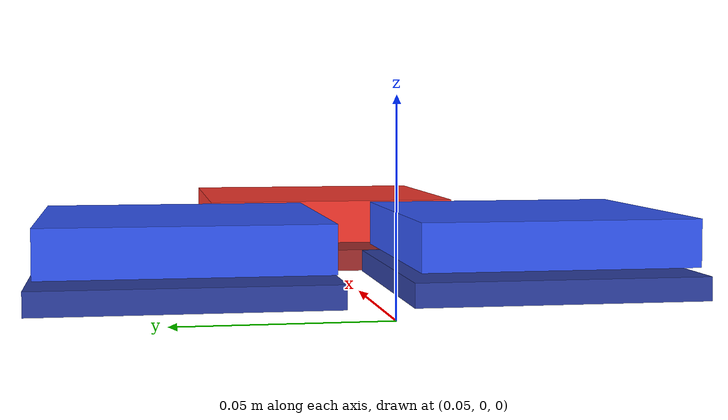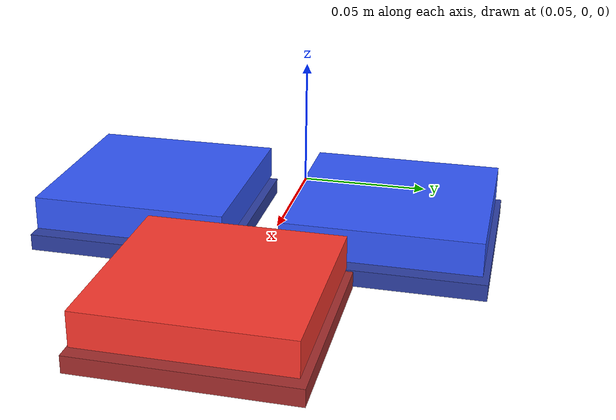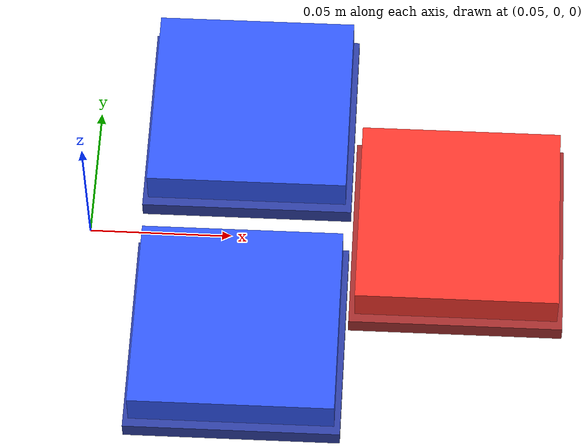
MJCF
<mujoco model="microduck_controller_pads">
    <compiler angle="radian" autolimits="true"/>

    <default>
        <joint axis="0 0 1" type="slide" limited="true" range="-0.008 0"
               damping="3.0" stiffness="250" springref="0"/>
        <!-- 70 mm caps in a tight triangle: every neighboring edge is within
             20 mm, so changing requests does not require crossing the old
             10-14 cm empty spaces. -->
        <geom type="box" size="0.035 0.035 0.006" friction="1.2 0.01 0.001"
              condim="3"/>
    </default>

    <worldbody>
        <!-- Raised non-colliding housings make the button locations readable. -->
        <geom name="left_pad_housing" type="box" pos="0.105 0.045 0.003"
              size="0.037 0.037 0.003" rgba="0.18 0.25 0.65 1" contype="0" conaffinity="0"/>
        <geom name="right_pad_housing" type="box" pos="0.105 -0.045 0.003"
              size="0.037 0.037 0.003" rgba="0.18 0.25 0.65 1" contype="0" conaffinity="0"/>
        <geom name="jump_pad_housing" type="box" pos="0.18 0 0.003"
              size="0.037 0.037 0.003" rgba="0.65 0.18 0.18 1" contype="0" conaffinity="0"/>

        <body name="left_pad" pos="0.105 0.045 0.014">
            <joint name="passive_left_pad"/>
            <inertial pos="0 0 0" mass="0.025" diaginertia="3e-5 3e-5 5e-5"/>
            <geom name="left_pad_surface" rgba="0.2 0.35 1 1"/>
        </body>
        <body name="right_pad" pos="0.105 -0.045 0.014">
            <joint name="passive_right_pad"/>
            <inertial pos="0 0 0" mass="0.025" diaginertia="3e-5 3e-5 5e-5"/>
            <geom name="right_pad_surface" rgba="0.2 0.35 1 1"/>
        </body>
        <body name="jump_pad" pos="0.18 0 0.014">
            <joint name="passive_jump_pad"/>
            <inertial pos="0 0 0" mass="0.025" diaginertia="3e-5 3e-5 5e-5"/>
            <geom name="jump_pad_surface" rgba="1 0.22 0.18 1"/>
        </body>
    </worldbody>
</mujoco>
